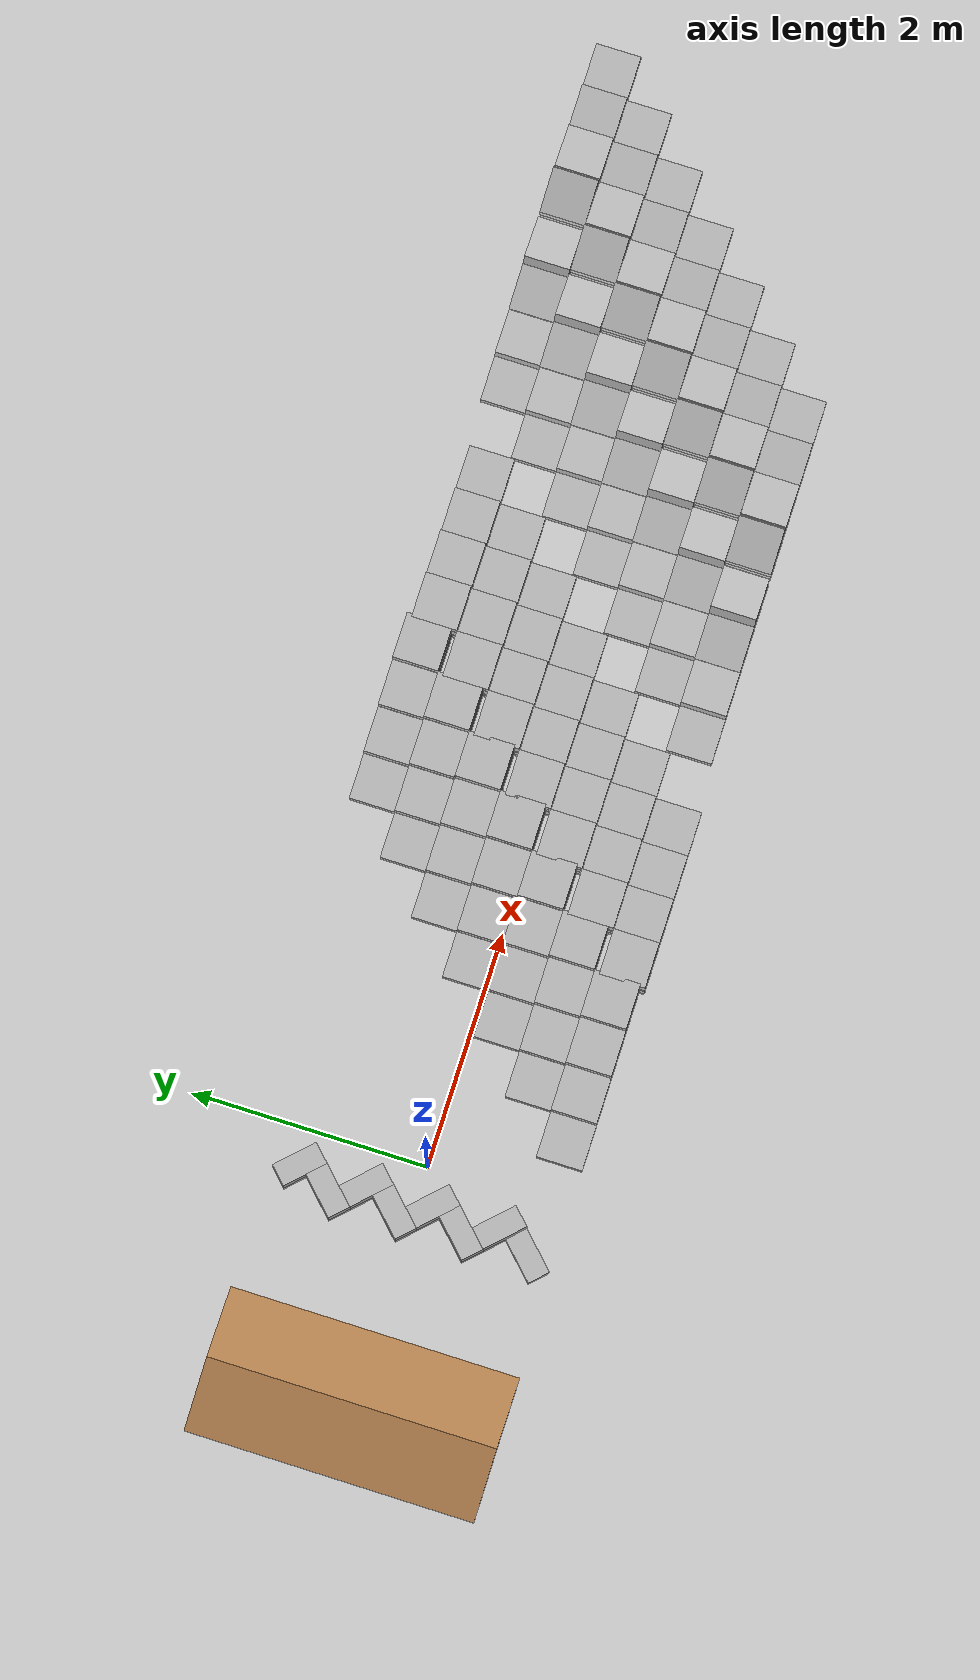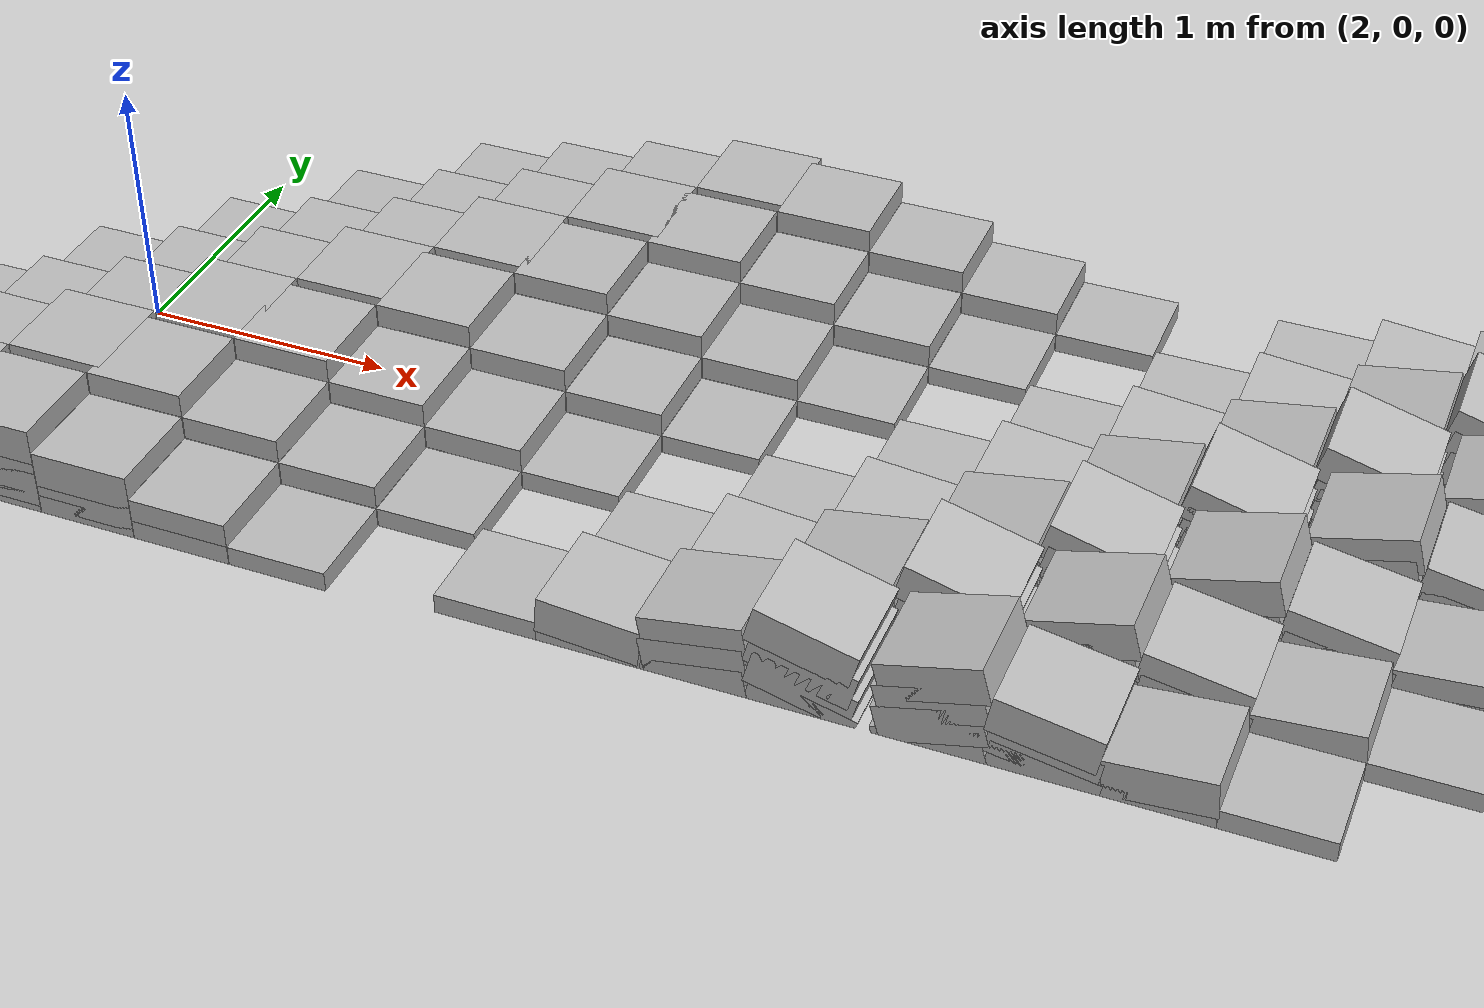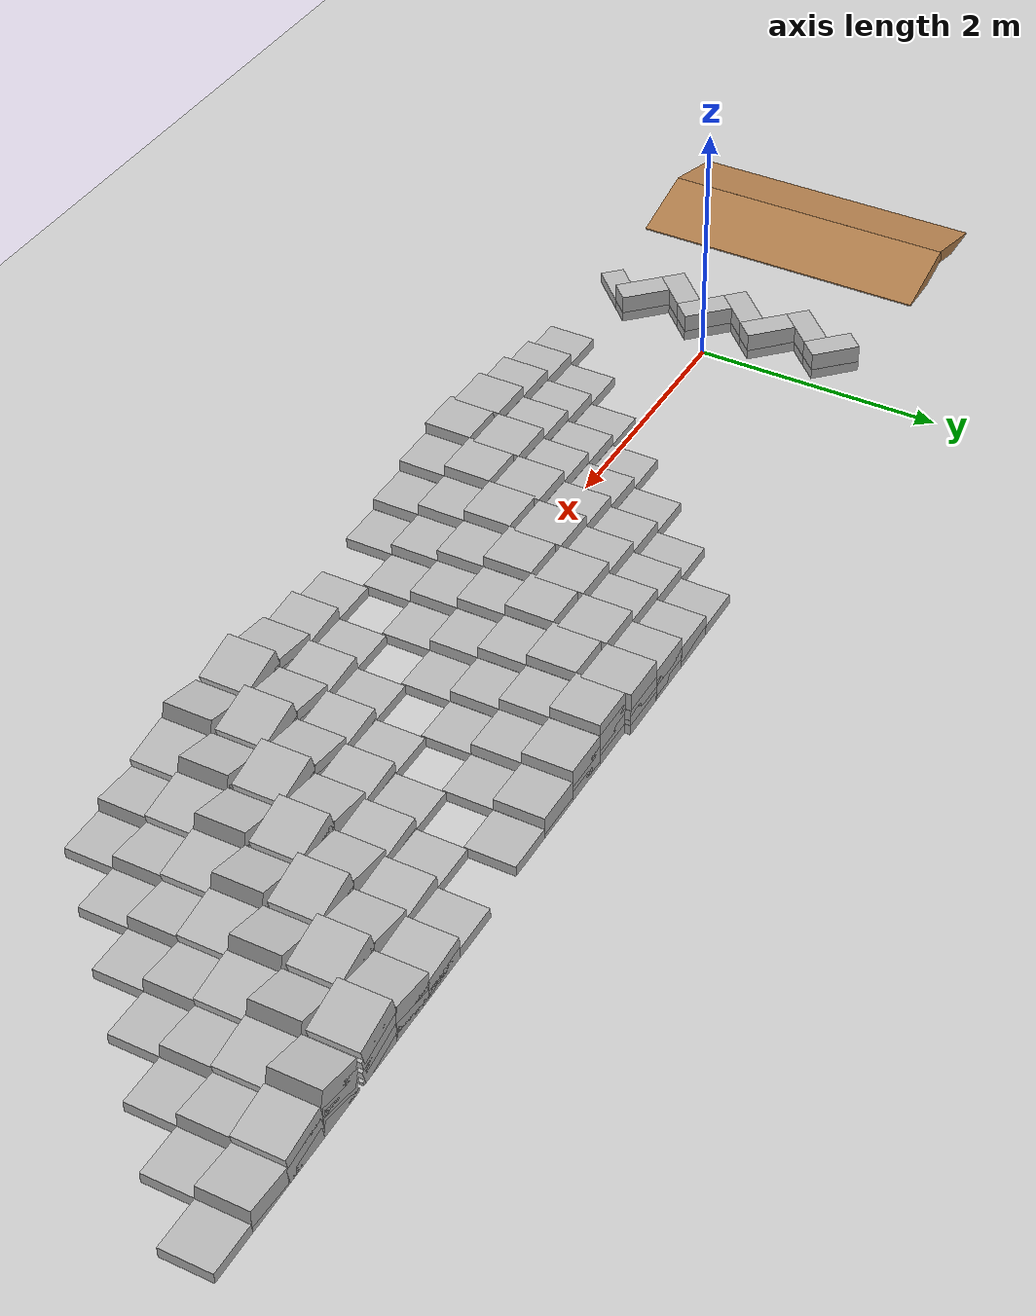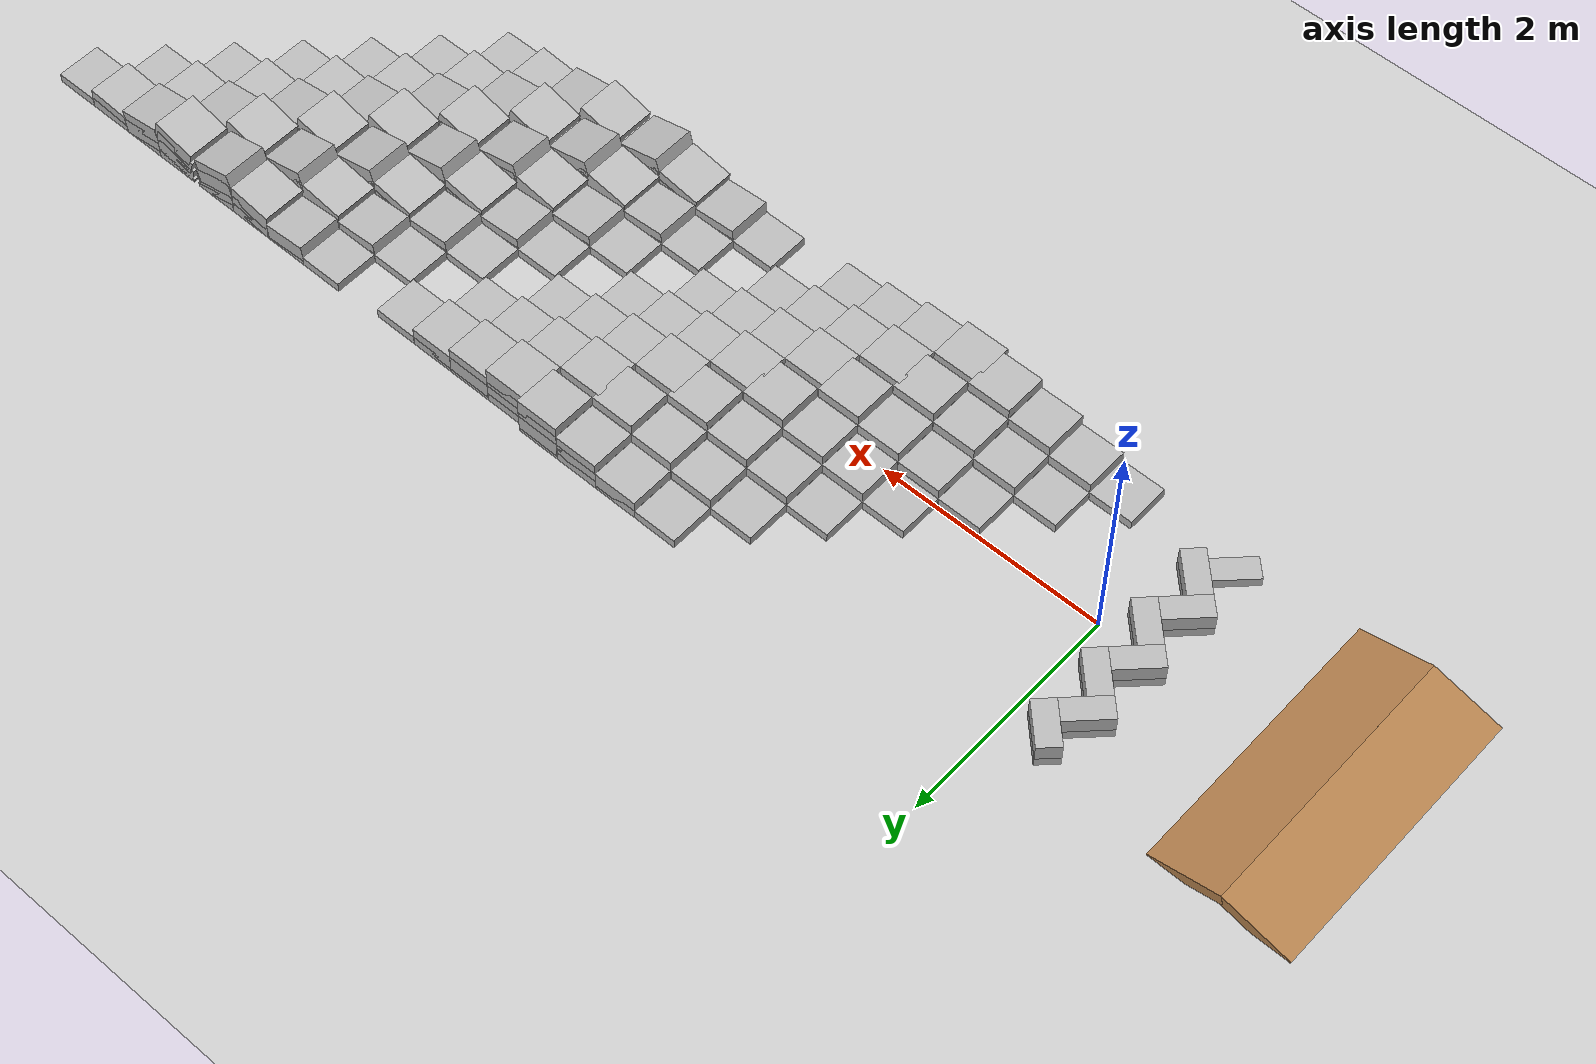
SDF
<?xml version="1.0" ?>
<sdf version="1.4">
  <world name="trials_task_2">
    <physics type="ode">
      <gravity>0 0 -9.81</gravity>
      <ode>
        <solver>
          <type>quick</type>
          <iters>50</iters>
          <sor>1.4</sor>
        </solver>
        <constraints>
          <cfm>0.0</cfm>
          <erp>0.2</erp>
          <contact_max_correcting_vel>100.0</contact_max_correcting_vel>
          <contact_surface_layer>0.0</contact_surface_layer>
        </constraints>
      </ode>
      <real_time_update_rate>1000</real_time_update_rate>
      <max_step_size>0.001</max_step_size>
    </physics>

    <!--A global light source -->
    <include>
      <uri>model://sun</uri>
    </include>

    <!-- A ground plane -->
    <include>
      <uri>model://ground_plane</uri>
      <pose>0 0 0 0 0 0</pose>
    </include>

    <model name="ramp_0">
      <pose>-2 0 0 0 0 0</pose>
      <static>true</static>
      <link name="link">
        <collision name="incline_collision">
          <pose>0.29175 0 0.0335 0 0.261799364 0</pose>
          <geometry>
            <box>
              <size>.631104356 2.43839619 .1</size>
            </box>
          </geometry>
        </collision>
        <visual name="incline_visual">
          <pose>0.29175 0 0.0335 0 0.261799364 0</pose>
          <geometry>
            <box>
              <size>.631104356 2.43839619 .1</size>
            </box>
          </geometry>
          <material>
            <script><name>Gazebo/WoodFloor</name></script>
          </material>
        </visual>

        <collision name="decline_collision">
          <pose>-0.29175 0 0.0335 0 -0.261799364 0</pose>
          <geometry>
            <box>
              <size>.631104356 2.43839619 .1</size>
            </box>
          </geometry>
        </collision>
        <visual name="decline_visual">
          <pose>-0.29175 0 0.0335 0 -0.261799364 0</pose>
          <geometry>
            <box>
              <size>.631104356 2.43839619 .1</size>
            </box>
          </geometry>
          <material>
            <script><name>Gazebo/WoodFloor</name></script>
          </material>
        </visual>
      </link>
    </model>

    <!-- Chevron cinder block wall. TODO: put in rsdf and fix origin -->
    <model name="wall_2">
      <static>true</static>
      <pose>-4.5 -1.247388158 0 0 0 0</pose>
      <include>
        <name>block_0</name>
        <uri>model://cinder_block_2</uri>
        <pose>4.058409714 0.265174984 0 0 0 0.785398163</pose>
      </include>
      <include>
        <name>block_2</name>
        <uri>model://cinder_block_2</uri>
        <pose>4.19535737 0.545809424 0.142875 0 0 -0.785398163</pose>
      </include>
      <include>
        <name>block_3</name>
        <uri>model://cinder_block_2</uri>
        <pose>4.19535737 0.545809424 0 0 0 -0.785398163</pose>
      </include>
      <include>
        <name>block_4</name>
        <uri>model://cinder_block_2</uri>
        <pose>4.058409714 0.826440054 0.142875 0 0 0.785398163</pose>
      </include>
      <include>
        <name>block_5</name>
        <uri>model://cinder_block_2</uri>
        <pose>4.058409714 0.826440054 0 0 0 0.785398163</pose>
      </include>
      <include>
        <name>block_6</name>
        <uri>model://cinder_block_2</uri>
        <pose>4.19535737 1.107073224 0.142875 0 0 -0.785398163</pose>
      </include>
      <include>
        <name>block_7</name>
        <uri>model://cinder_block_2</uri>
        <pose>4.19535737 1.107073224 0 0 0 -0.785398163</pose>
      </include>
      <include>
        <name>block_8</name>
        <uri>model://cinder_block_2</uri>
        <pose>4.058409714 1.387705886 0.142875 0 0 0.785398163</pose>
      </include>
      <include>
        <name>block_9</name>
        <uri>model://cinder_block_2</uri>
        <pose>4.058409714 1.387705886 0 0 0 0.785398163</pose>
      </include>
      <include>
        <name>block_10</name>
        <uri>model://cinder_block_2</uri>
        <pose>4.19535737 1.668339056 0.142875 0 0 -0.785398163</pose>
      </include>
      <include>
        <name>block_11</name>
        <uri>model://cinder_block_2</uri>
        <pose>4.19535737 1.668339056 0 0 0 -0.785398163</pose>
      </include>
      <include>
        <name>block_12</name>
        <uri>model://cinder_block_2</uri>
        <pose>4.058409714 1.948972226 0.142875 0 0 0.785398163</pose>
      </include>
      <include>
        <name>block_13</name>
        <uri>model://cinder_block_2</uri>
        <pose>4.058409714 1.948972226 0 0 0 0.785398163</pose>
      </include>
      <include>
        <name>block_14</name>
        <uri>model://cinder_block_2</uri>
        <pose>4.19535737 2.229604888 0.142875 0 0 -0.785398163</pose>
      </include>
      <include>
        <name>block_15</name>
        <uri>model://cinder_block_2</uri>
        <pose>4.19535737 2.229604888 0 0 0 -0.785398163</pose>
      </include>
    </model> <!-- wall_2 (chevron wall)-->

   <include>
    <name>level_block_0</name>
    <uri>model://block_level_steps</uri>
    <pose>0.54 -1 0 0 0 0</pose>
   </include>

   <include>
    <name>level_block_1</name>
    <uri>model://block_level_steps</uri>
    <pose>5.572 1.2896 0 0 0 3.14159</pose>
   </include>

   <include>
     <name>angle_block_0</name>
     <uri>model://block_angle_steps</uri>
     <pose>4.03 -1 0 0 0 0</pose>
   </include>

   <include>
     <name>angle_block_1</name>
     <uri>model://block_angle_steps</uri>
     <pose>9.125 1.322 0 0 0 3.14159</pose>
   </include>

    <plugin filename="libVRCPlugin.so" name="vrc_plugin">
      <atlas>
        <model_name>atlas</model_name>
        <pin_link>utorso</pin_link>
      </atlas>
      <drc_vehicle>
        <model_name>drc_vehicle_xp900</model_name>
        <seat_link>polaris_ranger_xp900::chassis</seat_link>
      </drc_vehicle>
      <drc_fire_hose>
        <fire_hose_model>fire_hose</fire_hose_model>
        <coupling_link>coupling</coupling_link>
        <standpipe_model>standpipe</standpipe_model>
        <spout_link>standpipe</spout_link>
        <thread_pitch>-1000</thread_pitch>
        <coupling_relative_pose>1.17038e-05 -0.125623 0.35 -0.0412152 -1.57078 1.61199</coupling_relative_pose>
      </drc_fire_hose>
    </plugin>

  </world>
</sdf>

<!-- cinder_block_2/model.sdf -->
<sdf version="1.5">
  <model name="cinder_block_2">
    <link name="link">
      <inertial>
        <pose>0 0 0.07 0 0 0</pose>
        <!-- volume about 0.0085 m^3, density 2000 kg/m^3 -->
        <mass>5</mass>
        <!-- approximate as uniform box 0.37 x 0.17 x 0.20 m -->
        <inertia>
          <ixx>0.06908</ixx>
          <ixy>0.0000</ixy>
          <iyy>0.028705</iyy>
          <ixz>0.0000</ixz>
          <iyz>0.0000</iyz>
          <izz>0.073708</izz>
        </inertia>
      </inertial>
      <visual name="visual">
        <geometry>
	  <box>
		<size>0.396875 0.19368008 0.146</size>
	  </box>
        </geometry>
      </visual>
      <collision name="collision_box">
        <pose>0 0 0 0 0 0</pose>
        <geometry>
          <box>
            <size>0.396875 0.19368008 0.146</size>
          </box>
        </geometry>
        <surface>
          <contact>
            <ode>
              <max_vel>0.1</max_vel>
              <min_depth>0.001</min_depth>
            </ode>
          </contact>
          <friction>
            <ode>
              <mu>1.0</mu>
              <mu2>1.0</mu2>
            </ode>
          </friction>
        </surface>
      </collision>
    </link>
  </model>
</sdf>

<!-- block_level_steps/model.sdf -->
<sdf version="1.4">

  <model name="block_level_steps">
    <pose>0 0 0 0 0 0</pose>

          <include>
            <name>block_0_0_0</name>
            <pose> 0.0 0.0 0.0 0 0 1.570796 </pose>
            <uri>model://cinder_block_wide</uri>
          </include>

          <include>
            <name>block_0_1_1</name>
            <pose> 0.389 0.0 0.095 0 0 1.570796 </pose>
            <uri>model://cinder_block_wide</uri>
          </include>
          <include>
            <name>block_0_1_0</name>
            <pose> 0.389 0.0 0.0 0 0 1.570796 </pose>
            <uri>model://cinder_block_wide</uri>
          </include>

          <include>
            <name>block_0_2_2</name>
            <pose> 0.778 0.0 0.19 0 0 1.570796 </pose>
            <uri>model://cinder_block_wide</uri>
          </include>
          <include>
            <name>block_0_2_1</name>
            <pose> 0.778 0.0 0.095 0 0 1.570796 </pose>
            <uri>model://cinder_block_wide</uri>
          </include>
          <include>
            <name>block_0_2_0</name>
            <pose> 0.778 0.0 0.0 0 0 1.570796 </pose>
            <uri>model://cinder_block_wide</uri>
          </include>

          <include>
            <name>block_0_3_3</name>
            <pose> 1.167 0.0 0.28500000000000003 0 0 1.570796 </pose>
            <uri>model://cinder_block_wide</uri>
          </include>
          <include>
            <name>block_0_3_2</name>
            <pose> 1.167 0.0 0.19 0 0 1.570796 </pose>
            <uri>model://cinder_block_wide</uri>
          </include>
          <include>
            <name>block_0_3_1</name>
            <pose> 1.167 0.0 0.095 0 0 1.570796 </pose>
            <uri>model://cinder_block_wide</uri>
          </include>
          <include>
            <name>block_0_3_0</name>
            <pose> 1.167 0.0 0.0 0 0 1.570796 </pose>
            <uri>model://cinder_block_wide</uri>
          </include>

          <include>
            <name>block_1_0_0</name>
            <pose> 0.389 0.389 0.0 0 0 1.570796 </pose>
            <uri>model://cinder_block_wide</uri>
          </include>

          <include>
            <name>block_1_1_1</name>
            <pose> 0.778 0.389 0.095 0 0 1.570796 </pose>
            <uri>model://cinder_block_wide</uri>
          </include>
          <include>
            <name>block_1_1_0</name>
            <pose> 0.778 0.389 0.0 0 0 1.570796 </pose>
            <uri>model://cinder_block_wide</uri>
          </include>

          <include>
            <name>block_1_2_2</name>
            <pose> 1.167 0.389 0.19 0 0 1.570796 </pose>
            <uri>model://cinder_block_wide</uri>
          </include>
          <include>
            <name>block_1_2_1</name>
            <pose> 1.167 0.389 0.095 0 0 1.570796 </pose>
            <uri>model://cinder_block_wide</uri>
          </include>
          <include>
            <name>block_1_2_0</name>
            <pose> 1.167 0.389 0.0 0 0 1.570796 </pose>
            <uri>model://cinder_block_wide</uri>
          </include>

          <include>
            <name>block_1_3_3</name>
            <pose> 1.556 0.389 0.28500000000000003 0 0 1.570796 </pose>
            <uri>model://cinder_block_wide</uri>
          </include>
          <include>
            <name>block_1_3_2</name>
            <pose> 1.556 0.389 0.19 0 0 1.570796 </pose>
            <uri>model://cinder_block_wide</uri>
          </include>
          <include>
            <name>block_1_3_1</name>
            <pose> 1.556 0.389 0.095 0 0 1.570796 </pose>
            <uri>model://cinder_block_wide</uri>
          </include>
          <include>
            <name>block_1_3_0</name>
            <pose> 1.556 0.389 0.0 0 0 1.570796 </pose>
            <uri>model://cinder_block_wide</uri>
          </include>

          <include>
            <name>block_2_0_0</name>
            <pose> 0.778 0.778 0.0 0 0 1.570796 </pose>
            <uri>model://cinder_block_wide</uri>
          </include>

          <include>
            <name>block_2_1_1</name>
            <pose> 1.167 0.778 0.095 0 0 1.570796 </pose>
            <uri>model://cinder_block_wide</uri>
          </include>
          <include>
            <name>block_2_1_0</name>
            <pose> 1.167 0.778 0.0 0 0 1.570796 </pose>
            <uri>model://cinder_block_wide</uri>
          </include>

          <include>
            <name>block_2_2_2</name>
            <pose> 1.556 0.778 0.19 0 0 1.570796 </pose>
            <uri>model://cinder_block_wide</uri>
          </include>
          <include>
            <name>block_2_2_1</name>
            <pose> 1.556 0.778 0.095 0 0 1.570796 </pose>
            <uri>model://cinder_block_wide</uri>
          </include>
          <include>
            <name>block_2_2_0</name>
            <pose> 1.556 0.778 0.0 0 0 1.570796 </pose>
            <uri>model://cinder_block_wide</uri>
          </include>

          <include>
            <name>block_2_3_3</name>
            <pose> 1.945 0.778 0.28500000000000003 0 0 1.570796 </pose>
            <uri>model://cinder_block_wide</uri>
          </include>
          <include>
            <name>block_2_3_2</name>
            <pose> 1.945 0.778 0.19 0 0 1.570796 </pose>
            <uri>model://cinder_block_wide</uri>
          </include>
          <include>
            <name>block_2_3_1</name>
            <pose> 1.945 0.778 0.095 0 0 1.570796 </pose>
            <uri>model://cinder_block_wide</uri>
          </include>
          <include>
            <name>block_2_3_0</name>
            <pose> 1.945 0.778 0.0 0 0 1.570796 </pose>
            <uri>model://cinder_block_wide</uri>
          </include>

          <include>
            <name>block_3_0_0</name>
            <pose> 1.167 1.167 0.0 0 0 1.570796 </pose>
            <uri>model://cinder_block_wide</uri>
          </include>

          <include>
            <name>block_3_1_1</name>
            <pose> 1.556 1.167 0.095 0 0 1.570796 </pose>
            <uri>model://cinder_block_wide</uri>
          </include>
          <include>
            <name>block_3_1_0</name>
            <pose> 1.556 1.167 0.0 0 0 1.570796 </pose>
            <uri>model://cinder_block_wide</uri>
          </include>

          <include>
            <name>block_3_2_2</name>
            <pose> 1.945 1.167 0.19 0 0 1.570796 </pose>
            <uri>model://cinder_block_wide</uri>
          </include>
          <include>
            <name>block_3_2_1</name>
            <pose> 1.945 1.167 0.095 0 0 1.570796 </pose>
            <uri>model://cinder_block_wide</uri>
          </include>
          <include>
            <name>block_3_2_0</name>
            <pose> 1.945 1.167 0.0 0 0 1.570796 </pose>
            <uri>model://cinder_block_wide</uri>
          </include>

          <include>
            <name>block_3_3_3</name>
            <pose> 2.334 1.167 0.28500000000000003 0 0 1.570796 </pose>
            <uri>model://cinder_block_wide</uri>
          </include>
          <include>
            <name>block_3_3_2</name>
            <pose> 2.334 1.167 0.19 0 0 1.570796 </pose>
            <uri>model://cinder_block_wide</uri>
          </include>
          <include>
            <name>block_3_3_1</name>
            <pose> 2.334 1.167 0.095 0 0 1.570796 </pose>
            <uri>model://cinder_block_wide</uri>
          </include>
          <include>
            <name>block_3_3_0</name>
            <pose> 2.334 1.167 0.0 0 0 1.570796 </pose>
            <uri>model://cinder_block_wide</uri>
          </include>

          <include>
            <name>block_4_0_0</name>
            <pose> 1.556 1.556 0.0 0 0 1.570796 </pose>
            <uri>model://cinder_block_wide</uri>
          </include>

          <include>
            <name>block_4_1_1</name>
            <pose> 1.945 1.556 0.095 0 0 1.570796 </pose>
            <uri>model://cinder_block_wide</uri>
          </include>
          <include>
            <name>block_4_1_0</name>
            <pose> 1.945 1.556 0.0 0 0 1.570796 </pose>
            <uri>model://cinder_block_wide</uri>
          </include>

          <include>
            <name>block_4_2_2</name>
            <pose> 2.334 1.556 0.19 0 0 1.570796 </pose>
            <uri>model://cinder_block_wide</uri>
          </include>
          <include>
            <name>block_4_2_1</name>
            <pose> 2.334 1.556 0.095 0 0 1.570796 </pose>
            <uri>model://cinder_block_wide</uri>
          </include>
          <include>
            <name>block_4_2_0</name>
            <pose> 2.334 1.556 0.0 0 0 1.570796 </pose>
            <uri>model://cinder_block_wide</uri>
          </include>

          <include>
            <name>block_4_3_3</name>
            <pose> 2.723 1.556 0.28500000000000003 0 0 1.570796 </pose>
            <uri>model://cinder_block_wide</uri>
          </include>
          <include>
            <name>block_4_3_2</name>
            <pose> 2.723 1.556 0.19 0 0 1.570796 </pose>
            <uri>model://cinder_block_wide</uri>
          </include>
          <include>
            <name>block_4_3_1</name>
            <pose> 2.723 1.556 0.095 0 0 1.570796 </pose>
            <uri>model://cinder_block_wide</uri>
          </include>
          <include>
            <name>block_4_3_0</name>
            <pose> 2.723 1.556 0.0 0 0 1.570796 </pose>
            <uri>model://cinder_block_wide</uri>
          </include>

          <include>
            <name>block_5_0_0</name>
            <pose> 1.945 1.945 0.0 0 0 1.570796 </pose>
            <uri>model://cinder_block_wide</uri>
          </include>

          <include>
            <name>block_5_1_1</name>
            <pose> 2.334 1.945 0.095 0 0 1.570796 </pose>
            <uri>model://cinder_block_wide</uri>
          </include>
          <include>
            <name>block_5_1_0</name>
            <pose> 2.334 1.945 0.0 0 0 1.570796 </pose>
            <uri>model://cinder_block_wide</uri>
          </include>

          <include>
            <name>block_5_2_2</name>
            <pose> 2.723 1.945 0.19 0 0 1.570796 </pose>
            <uri>model://cinder_block_wide</uri>
          </include>
          <include>
            <name>block_5_2_1</name>
            <pose> 2.723 1.945 0.095 0 0 1.570796 </pose>
            <uri>model://cinder_block_wide</uri>
          </include>
          <include>
            <name>block_5_2_0</name>
            <pose> 2.723 1.945 0.0 0 0 1.570796 </pose>
            <uri>model://cinder_block_wide</uri>
          </include>

          <include>
            <name>block_5_3_3</name>
            <pose> 3.112 1.945 0.28500000000000003 0 0 1.570796 </pose>
            <uri>model://cinder_block_wide</uri>
          </include>
          <include>
            <name>block_5_3_2</name>
            <pose> 3.112 1.945 0.19 0 0 1.570796 </pose>
            <uri>model://cinder_block_wide</uri>
          </include>
          <include>
            <name>block_5_3_1</name>
            <pose> 3.112 1.945 0.095 0 0 1.570796 </pose>
            <uri>model://cinder_block_wide</uri>
          </include>
          <include>
            <name>block_5_3_0</name>
            <pose> 3.112 1.945 0.0 0 0 1.570796 </pose>
            <uri>model://cinder_block_wide</uri>
          </include>

          <include>
            <name>block_6_0_0</name>
            <pose> 2.334 2.334 0.0 0 0 1.570796 </pose>
            <uri>model://cinder_block_wide</uri>
          </include>

          <include>
            <name>block_6_1_1</name>
            <pose> 2.723 2.334 0.095 0 0 1.570796 </pose>
            <uri>model://cinder_block_wide</uri>
          </include>
          <include>
            <name>block_6_1_0</name>
            <pose> 2.723 2.334 0.0 0 0 1.570796 </pose>
            <uri>model://cinder_block_wide</uri>
          </include>

          <include>
            <name>block_6_2_2</name>
            <pose> 3.112 2.334 0.19 0 0 1.570796 </pose>
            <uri>model://cinder_block_wide</uri>
          </include>
          <include>
            <name>block_6_2_1</name>
            <pose> 3.112 2.334 0.095 0 0 1.570796 </pose>
            <uri>model://cinder_block_wide</uri>
          </include>
          <include>
            <name>block_6_2_0</name>
            <pose> 3.112 2.334 0.0 0 0 1.570796 </pose>
            <uri>model://cinder_block_wide</uri>
          </include>

          <include>
            <name>block_6_3_3</name>
            <pose> 3.5010000000000003 2.334 0.28500000000000003 0 0 1.570796 </pose>
            <uri>model://cinder_block_wide</uri>
          </include>
          <include>
            <name>block_6_3_2</name>
            <pose> 3.5010000000000003 2.334 0.19 0 0 1.570796 </pose>
            <uri>model://cinder_block_wide</uri>
          </include>
          <include>
            <name>block_6_3_1</name>
            <pose> 3.5010000000000003 2.334 0.095 0 0 1.570796 </pose>
            <uri>model://cinder_block_wide</uri>
          </include>
          <include>
            <name>block_6_3_0</name>
            <pose> 3.5010000000000003 2.334 0.0 0 0 1.570796 </pose>
            <uri>model://cinder_block_wide</uri>
          </include>

  </model>

</sdf>

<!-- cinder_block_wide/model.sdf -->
<sdf version="1.5">
  <model name="cinder_block_wide">
    <link name="link">
      <inertial>
        <pose>0 0  0.146 0 0 0</pose>
        <mass>5</mass>
        <!-- approximate as uniform box 0.387 x 0.387 x 0.092 m -->
        <inertia>
          <ixx>0.06814656666666667</ixx>
          <ixy>0.0000</ixy>
          <iyy>0.06814656666666667</iyy>
          <ixz>0.0000</ixz>
          <iyz>0.0000</iyz>
          <izz>0.1248075</izz>
        </inertia>
      </inertial>
      <visual name="visual">
        <geometry>

          <box>
            <size>0.387353556 0.387353556 0.146</size>
          </box>
        </geometry>
      </visual>

      <collision name="block_collision">
       <pose>0 0 0 0 0 0</pose>
        <geometry>
          <box>
            <size>0.387353556 0.387353556 0.146</size>
          </box>
        </geometry>
        <surface>
          <contact>
            <ode>
              <max_vel>0.1</max_vel>
              <min_depth>0.001</min_depth>
            </ode>
          </contact>
          <friction>
            <ode>
              <mu>1.0</mu>
              <mu2>1.0</mu2>
            </ode>
          </friction>
        </surface>

      </collision>

    </link>
  </model>
</sdf>

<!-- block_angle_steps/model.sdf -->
<sdf version="1.5">

  <model name="block_angle_steps">
    <pose>0 0 0 0 0 0</pose>

          <include>
            <name>block_0_0_0</name>
            <pose> 0.0 0.0 0.0 -0.0 0 1.570796 </pose>
            <uri>model://cinder_block_wide</uri>
          </include>

          <include>
            <name>block_0_1_1</name>
            <pose> 0.387 0.0 0.092 0.0872663888888889 0 1.570796 </pose>
            <uri>model://cinder_block_wide</uri>
          </include>

          <include>
            <name>block_0_1_0</name>
            <pose> 0.387 0.0 0.0 0.0872663888888889 0 1.570796 </pose>
            <uri>model://cinder_block_wide</uri>
          </include>

          <include>
            <name>block_0_2_2</name>
            <pose> 0.774 0.0 0.184 -0.1745327777777778 0 1.570796 </pose>
            <uri>model://cinder_block_wide</uri>
          </include>

          <include>
            <name>block_0_2_1</name>
            <pose> 0.774 0.0 0.092 -0.1745327777777778 0 1.570796 </pose>
            <uri>model://cinder_block_wide</uri>
          </include>

          <include>
            <name>block_0_2_0</name>
            <pose> 0.774 0.0 0.0 -0.1745327777777778 0 1.570796 </pose>
            <uri>model://cinder_block_wide</uri>
          </include>

          <include>
            <name>block_0_3_3</name>
            <pose> 1.161 0.0 0.276 0.2617991666666667 0 1.570796 </pose>
            <uri>model://cinder_block_wide</uri>
          </include>

          <include>
            <name>block_0_3_2</name>
            <pose> 1.161 0.0 0.184 0.2617991666666667 0 1.570796 </pose>
            <uri>model://cinder_block_wide</uri>
          </include>

          <include>
            <name>block_0_3_1</name>
            <pose> 1.161 0.0 0.092 0.2617991666666667 0 1.570796 </pose>
            <uri>model://cinder_block_wide</uri>
          </include>

          <include>
            <name>block_0_3_0</name>
            <pose> 1.161 0.0 0.0 0.2617991666666667 0 1.570796 </pose>
            <uri>model://cinder_block_wide</uri>
          </include>

          <include>
            <name>block_1_0_0</name>
            <pose> 0.387 0.387 0.0 -0.0 0 1.570796 </pose>
            <uri>model://cinder_block_wide</uri>
          </include>

          <include>
            <name>block_1_1_1</name>
            <pose> 0.774 0.387 0.092 0.0872663888888889 0 1.570796 </pose>
            <uri>model://cinder_block_wide</uri>
          </include>

          <include>
            <name>block_1_1_0</name>
            <pose> 0.774 0.387 0.0 0.0872663888888889 0 1.570796 </pose>
            <uri>model://cinder_block_wide</uri>
          </include>

          <include>
            <name>block_1_2_2</name>
            <pose> 1.161 0.387 0.184 -0.1745327777777778 0 1.570796 </pose>
            <uri>model://cinder_block_wide</uri>
          </include>

          <include>
            <name>block_1_2_1</name>
            <pose> 1.161 0.387 0.092 -0.1745327777777778 0 1.570796 </pose>
            <uri>model://cinder_block_wide</uri>
          </include>

          <include>
            <name>block_1_2_0</name>
            <pose> 1.161 0.387 0.0 -0.1745327777777778 0 1.570796 </pose>
            <uri>model://cinder_block_wide</uri>
          </include>

          <include>
            <name>block_1_3_3</name>
            <pose> 1.548 0.387 0.276 0.2617991666666667 0 1.570796 </pose>
            <uri>model://cinder_block_wide</uri>
          </include>

          <include>
            <name>block_1_3_2</name>
            <pose> 1.548 0.387 0.184 0.2617991666666667 0 1.570796 </pose>
            <uri>model://cinder_block_wide</uri>
          </include>

          <include>
            <name>block_1_3_1</name>
            <pose> 1.548 0.387 0.092 0.2617991666666667 0 1.570796 </pose>
            <uri>model://cinder_block_wide</uri>
          </include>

          <include>
            <name>block_1_3_0</name>
            <pose> 1.548 0.387 0.0 0.2617991666666667 0 1.570796 </pose>
            <uri>model://cinder_block_wide</uri>
          </include>

          <include>
            <name>block_2_0_0</name>
            <pose> 0.774 0.774 0.0 -0.0 0 1.570796 </pose>
            <uri>model://cinder_block_wide</uri>
          </include>

          <include>
            <name>block_2_1_1</name>
            <pose> 1.161 0.774 0.092 0.0872663888888889 0 1.570796 </pose>
            <uri>model://cinder_block_wide</uri>
          </include>

          <include>
            <name>block_2_1_0</name>
            <pose> 1.161 0.774 0.0 0.0872663888888889 0 1.570796 </pose>
            <uri>model://cinder_block_wide</uri>
          </include>

          <include>
            <name>block_2_2_2</name>
            <pose> 1.548 0.774 0.184 -0.1745327777777778 0 1.570796 </pose>
            <uri>model://cinder_block_wide</uri>
          </include>

          <include>
            <name>block_2_2_1</name>
            <pose> 1.548 0.774 0.092 -0.1745327777777778 0 1.570796 </pose>
            <uri>model://cinder_block_wide</uri>
          </include>

          <include>
            <name>block_2_2_0</name>
            <pose> 1.548 0.774 0.0 -0.1745327777777778 0 1.570796 </pose>
            <uri>model://cinder_block_wide</uri>
          </include>

          <include>
            <name>block_2_3_3</name>
            <pose> 1.935 0.774 0.276 0.2617991666666667 0 1.570796 </pose>
            <uri>model://cinder_block_wide</uri>
          </include>

          <include>
            <name>block_2_3_2</name>
            <pose> 1.935 0.774 0.184 0.2617991666666667 0 1.570796 </pose>
            <uri>model://cinder_block_wide</uri>
          </include>

          <include>
            <name>block_2_3_1</name>
            <pose> 1.935 0.774 0.092 0.2617991666666667 0 1.570796 </pose>
            <uri>model://cinder_block_wide</uri>
          </include>

          <include>
            <name>block_2_3_0</name>
            <pose> 1.935 0.774 0.0 0.2617991666666667 0 1.570796 </pose>
            <uri>model://cinder_block_wide</uri>
          </include>

          <include>
            <name>block_3_0_0</name>
            <pose> 1.161 1.161 0.0 -0.0 0 1.570796 </pose>
            <uri>model://cinder_block_wide</uri>
          </include>

          <include>
            <name>block_3_1_1</name>
            <pose> 1.548 1.161 0.092 0.0872663888888889 0 1.570796 </pose>
            <uri>model://cinder_block_wide</uri>
          </include>

          <include>
            <name>block_3_1_0</name>
            <pose> 1.548 1.161 0.0 0.0872663888888889 0 1.570796 </pose>
            <uri>model://cinder_block_wide</uri>
          </include>

          <include>
            <name>block_3_2_2</name>
            <pose> 1.935 1.161 0.184 -0.1745327777777778 0 1.570796 </pose>
            <uri>model://cinder_block_wide</uri>
          </include>

          <include>
            <name>block_3_2_1</name>
            <pose> 1.935 1.161 0.092 -0.1745327777777778 0 1.570796 </pose>
            <uri>model://cinder_block_wide</uri>
          </include>

          <include>
            <name>block_3_2_0</name>
            <pose> 1.935 1.161 0.0 -0.1745327777777778 0 1.570796 </pose>
            <uri>model://cinder_block_wide</uri>
          </include>

          <include>
            <name>block_3_3_3</name>
            <pose> 2.322 1.161 0.276 0.2617991666666667 0 1.570796 </pose>
            <uri>model://cinder_block_wide</uri>
          </include>

          <include>
            <name>block_3_3_2</name>
            <pose> 2.322 1.161 0.184 0.2617991666666667 0 1.570796 </pose>
            <uri>model://cinder_block_wide</uri>
          </include>

          <include>
            <name>block_3_3_1</name>
            <pose> 2.322 1.161 0.092 0.2617991666666667 0 1.570796 </pose>
            <uri>model://cinder_block_wide</uri>
          </include>

          <include>
            <name>block_3_3_0</name>
            <pose> 2.322 1.161 0.0 0.2617991666666667 0 1.570796 </pose>
            <uri>model://cinder_block_wide</uri>
          </include>

          <include>
            <name>block_4_0_0</name>
            <pose> 1.548 1.548 0.0 -0.0 0 1.570796 </pose>
            <uri>model://cinder_block_wide</uri>
          </include>

          <include>
            <name>block_4_1_1</name>
            <pose> 1.935 1.548 0.092 0.0872663888888889 0 1.570796 </pose>
            <uri>model://cinder_block_wide</uri>
          </include>

          <include>
            <name>block_4_1_0</name>
            <pose> 1.935 1.548 0.0 0.0872663888888889 0 1.570796 </pose>
            <uri>model://cinder_block_wide</uri>
          </include>

          <include>
            <name>block_4_2_2</name>
            <pose> 2.322 1.548 0.184 -0.1745327777777778 0 1.570796 </pose>
            <uri>model://cinder_block_wide</uri>
          </include>

          <include>
            <name>block_4_2_1</name>
            <pose> 2.322 1.548 0.092 -0.1745327777777778 0 1.570796 </pose>
            <uri>model://cinder_block_wide</uri>
          </include>

          <include>
            <name>block_4_2_0</name>
            <pose> 2.322 1.548 0.0 -0.1745327777777778 0 1.570796 </pose>
            <uri>model://cinder_block_wide</uri>
          </include>

          <include>
            <name>block_4_3_3</name>
            <pose> 2.709 1.548 0.276 0.2617991666666667 0 1.570796 </pose>
            <uri>model://cinder_block_wide</uri>
          </include>

          <include>
            <name>block_4_3_2</name>
            <pose> 2.709 1.548 0.184 0.2617991666666667 0 1.570796 </pose>
            <uri>model://cinder_block_wide</uri>
          </include>

          <include>
            <name>block_4_3_1</name>
            <pose> 2.709 1.548 0.092 0.2617991666666667 0 1.570796 </pose>
            <uri>model://cinder_block_wide</uri>
          </include>

          <include>
            <name>block_4_3_0</name>
            <pose> 2.709 1.548 0.0 0.2617991666666667 0 1.570796 </pose>
            <uri>model://cinder_block_wide</uri>
          </include>

          <include>
            <name>block_5_0_0</name>
            <pose> 1.935 1.935 0.0 -0.0 0 1.570796 </pose>
            <uri>model://cinder_block_wide</uri>
          </include>

          <include>
            <name>block_5_1_1</name>
            <pose> 2.322 1.935 0.092 0.0872663888888889 0 1.570796 </pose>
            <uri>model://cinder_block_wide</uri>
          </include>

          <include>
            <name>block_5_1_0</name>
            <pose> 2.322 1.935 0.0 0.0872663888888889 0 1.570796 </pose>
            <uri>model://cinder_block_wide</uri>
          </include>

          <include>
            <name>block_5_2_2</name>
            <pose> 2.709 1.935 0.184 -0.1745327777777778 0 1.570796 </pose>
            <uri>model://cinder_block_wide</uri>
          </include>

          <include>
            <name>block_5_2_1</name>
            <pose> 2.709 1.935 0.092 -0.1745327777777778 0 1.570796 </pose>
            <uri>model://cinder_block_wide</uri>
          </include>

          <include>
            <name>block_5_2_0</name>
            <pose> 2.709 1.935 0.0 -0.1745327777777778 0 1.570796 </pose>
            <uri>model://cinder_block_wide</uri>
          </include>

          <include>
            <name>block_5_3_3</name>
            <pose> 3.096 1.935 0.276 0.2617991666666667 0 1.570796 </pose>
            <uri>model://cinder_block_wide</uri>
          </include>

          <include>
            <name>block_5_3_2</name>
            <pose> 3.096 1.935 0.184 0.2617991666666667 0 1.570796 </pose>
            <uri>model://cinder_block_wide</uri>
          </include>

          <include>
            <name>block_5_3_1</name>
            <pose> 3.096 1.935 0.092 0.2617991666666667 0 1.570796 </pose>
            <uri>model://cinder_block_wide</uri>
          </include>

          <include>
            <name>block_5_3_0</name>
            <pose> 3.096 1.935 0.0 0.2617991666666667 0 1.570796 </pose>
            <uri>model://cinder_block_wide</uri>
          </include>

          <include>
            <name>block_6_0_0</name>
            <pose> 2.322 2.322 0.0 -0.0 0 1.570796 </pose>
            <uri>model://cinder_block_wide</uri>
          </include>

          <include>
            <name>block_6_1_1</name>
            <pose> 2.709 2.322 0.092 0.0872663888888889 0 1.570796 </pose>
            <uri>model://cinder_block_wide</uri>
          </include>

          <include>
            <name>block_6_1_0</name>
            <pose> 2.709 2.322 0.0 0.0872663888888889 0 1.570796 </pose>
            <uri>model://cinder_block_wide</uri>
          </include>

          <include>
            <name>block_6_2_2</name>
            <pose> 3.096 2.322 0.184 -0.1745327777777778 0 1.570796 </pose>
            <uri>model://cinder_block_wide</uri>
          </include>

          <include>
            <name>block_6_2_1</name>
            <pose> 3.096 2.322 0.092 -0.1745327777777778 0 1.570796 </pose>
            <uri>model://cinder_block_wide</uri>
          </include>

          <include>
            <name>block_6_2_0</name>
            <pose> 3.096 2.322 0.0 -0.1745327777777778 0 1.570796 </pose>
            <uri>model://cinder_block_wide</uri>
          </include>

          <include>
            <name>block_6_3_3</name>
            <pose> 3.483 2.322 0.276 0.2617991666666667 0 1.570796 </pose>
            <uri>model://cinder_block_wide</uri>
          </include>

          <include>
            <name>block_6_3_2</name>
            <pose> 3.483 2.322 0.184 0.2617991666666667 0 1.570796 </pose>
            <uri>model://cinder_block_wide</uri>
          </include>

          <include>
            <name>block_6_3_1</name>
            <pose> 3.483 2.322 0.092 0.2617991666666667 0 1.570796 </pose>
            <uri>model://cinder_block_wide</uri>
          </include>

          <include>
            <name>block_6_3_0</name>
            <pose> 3.483 2.322 0.0 0.2617991666666667 0 1.570796 </pose>
            <uri>model://cinder_block_wide</uri>
          </include>

  </model>

</sdf>
